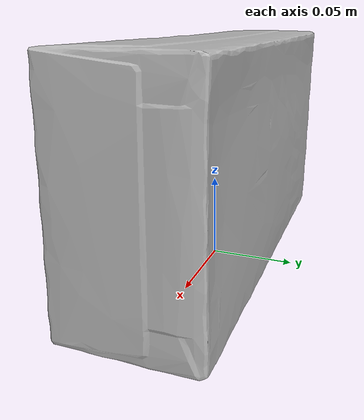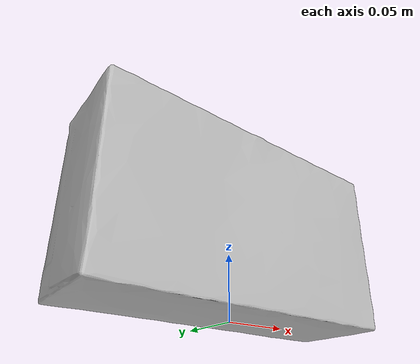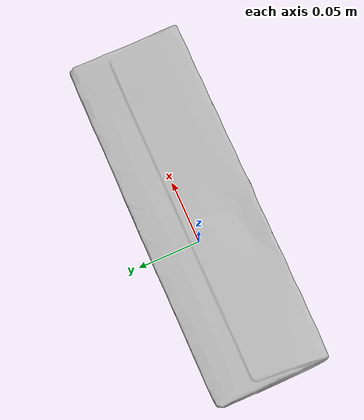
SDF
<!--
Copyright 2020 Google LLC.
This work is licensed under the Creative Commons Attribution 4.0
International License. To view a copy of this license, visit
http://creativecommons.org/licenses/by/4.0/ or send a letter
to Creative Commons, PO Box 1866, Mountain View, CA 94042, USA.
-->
<?xml version="1.0" ?>
<sdf version="1.6">
  <model name="Little_Debbie_Cloud_Cakes_10_ct">
    <link name="link_0">
      <visual name="visual">
        <geometry>
          <mesh>
            <uri>model://Little_Debbie_Cloud_Cakes_10_ct/meshes/model.obj</uri>
          </mesh>
        </geometry>
      </visual>
      <collision name="collision_0">
        <geometry>
          <mesh>
            <uri>model://Little_Debbie_Cloud_Cakes_10_ct/meshes/model.obj</uri>
          </mesh>
        </geometry>
      </collision>
    </link>
  </model>
</sdf>
